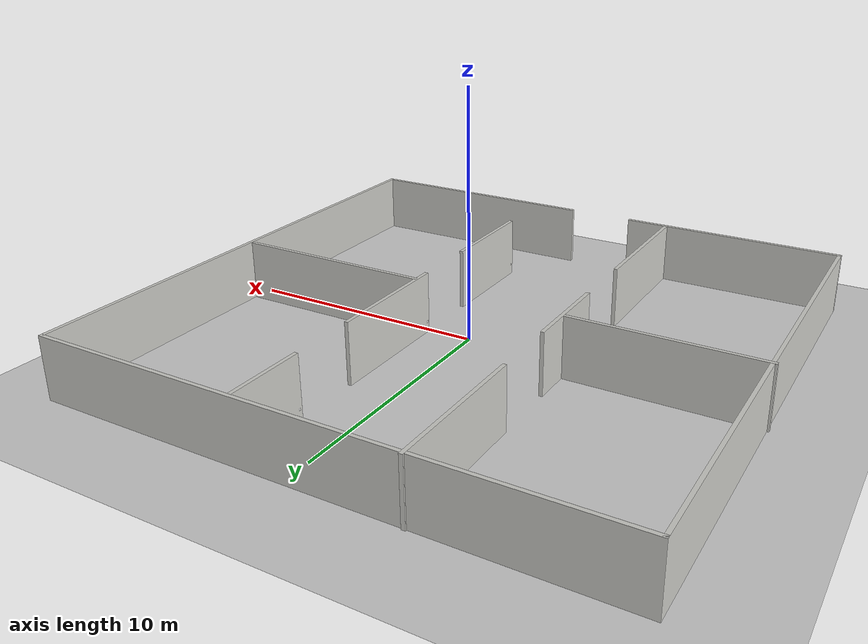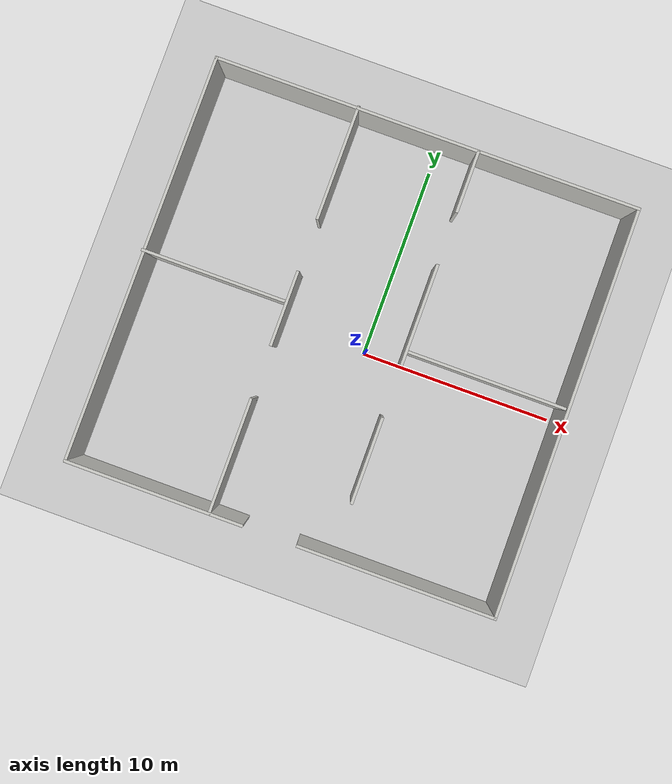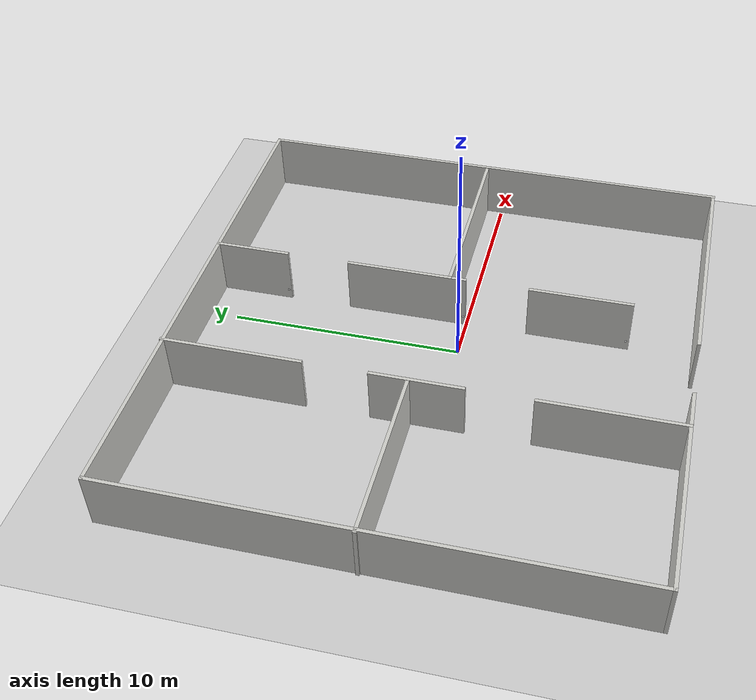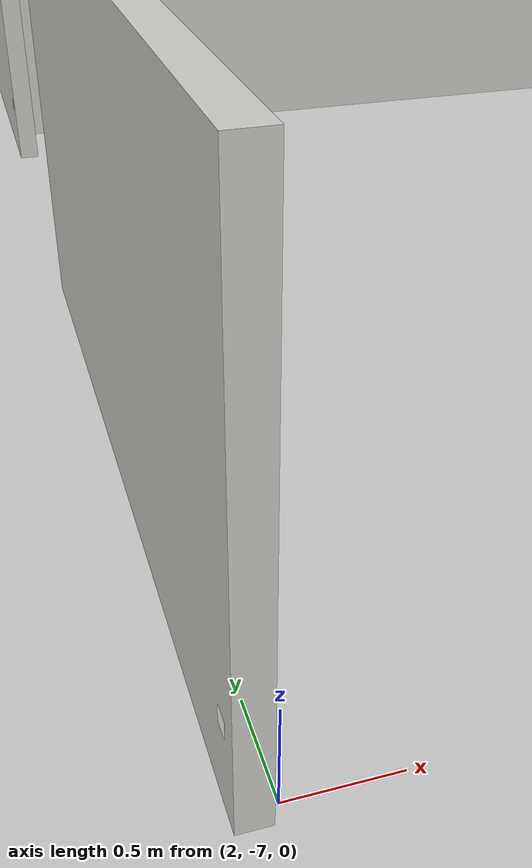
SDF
<sdf version="1.7">
 <world name="default">
  <scene><ambient>0.4 0.4 0.4 1</ambient><background>0.7 0.7 0.7 1</background><shadows>1</shadows></scene>
  <light name="sun" type="directional">
   <pose>0 0 10 0 -0 0</pose>
   <diffuse>0.8 0.8 0.8 1</diffuse>
   <specular>0.2 0.2 0.2 1</specular>
   <attenuation>
    <range>1000</range>
    <constant>0.9</constant>
    <linear>0.01</linear>
    <quadratic>0.001</quadratic>
   </attenuation>
   <direction>-0.5 0.1 -0.9</direction>
   <spot><inner_angle>0</inner_angle><outer_angle>0</outer_angle><falloff>0</falloff></spot>
  </light>
  <model name="ground_plane">
   <static>1</static>
   <link name="link">
    <collision name="collision">
     <geometry><plane><normal>0 0 1</normal><size>100 100</size></plane></geometry>
     <surface>
      <contact><collide_bitmask>65535</collide_bitmask></contact>
      <friction><ode><mu>100</mu><mu2>50</mu2></ode></friction>
     </surface>
    </collision>
    <visual name="visual">
     <cast_shadows>0</cast_shadows>
     <geometry><plane><normal>0 0 1</normal><size>100 100</size></plane></geometry>
     <material>
      <script><uri>file://media/materials/scripts/gazebo.material</uri><name>Gazebo/Grey</name></script>
     </material>
    </visual>
   </link>
  </model>
  <physics type="ode">
   <real_time_update_rate>1000</real_time_update_rate>
   <max_step_size>0.001</max_step_size>
   <real_time_factor>1</real_time_factor>
   <ode>
    <solver>
     <type>quick</type>
     <iters>150</iters>
     <precon_iters>0</precon_iters>
     <sor>1.4</sor>
     <use_dynamic_moi_rescaling>1</use_dynamic_moi_rescaling>
    </solver>
    <constraints>
     <cfm>1e-05</cfm>
     <erp>0.2</erp>
     <contact_max_correcting_vel>2000</contact_max_correcting_vel>
     <contact_surface_layer>0.01</contact_surface_layer>
    </constraints>
   </ode>
  </physics>
  <model name="TP_Scene3">
   <pose>-0.844964 0.723773 0 0 -0 0</pose>
   <link name="Wall_0">
    <collision name="Wall_0_Collision">
     <geometry><box><size>21.25 0.15 2.5</size></box></geometry>
     <pose>0 0 1.25 0 -0 0</pose>
    </collision>
    <visual name="Wall_0_Visual">
     <pose>0 0 1.25 0 -0 0</pose>
     <geometry><box><size>21.25 0.15 2.5</size></box></geometry>
     <material>
      <script><uri>file://media/materials/scripts/gazebo.material</uri><name>Gazebo/CeilingTiled</name></script>
      <ambient>0.921569 0.807843 0.615686 1</ambient>
     </material>
     <meta><layer>0</layer></meta>
    </visual>
    <pose>-11.0135 -0.02783 0 0 -0 1.5708</pose>
   </link>
   <link name="Wall_1">
    <collision name="Wall_1_Collision">
     <geometry><box><size>22.25 0.15 2.5</size></box></geometry>
     <pose>0 0 1.25 0 -0 0</pose>
    </collision>
    <visual name="Wall_1_Visual">
     <pose>0 0 1.25 0 -0 0</pose>
     <geometry><box><size>22.25 0.15 2.5</size></box></geometry>
     <material>
      <script><uri>file://media/materials/scripts/gazebo.material</uri><name>Gazebo/CeilingTiled</name></script>
      <ambient>0.921569 0.807843 0.615686 1</ambient>
     </material>
     <meta><layer>0</layer></meta>
    </visual>
    <pose>0.036465 10.5222 0 0 -0 0</pose>
   </link>
   <link name="Wall_2">
    <collision name="Wall_2_Collision">
     <geometry><box><size>21.25 0.15 2.5</size></box></geometry>
     <pose>0 0 1.25 0 -0 0</pose>
    </collision>
    <visual name="Wall_2_Visual">
     <pose>0 0 1.25 0 -0 0</pose>
     <geometry><box><size>21.25 0.15 2.5</size></box></geometry>
     <material>
      <script><uri>file://media/materials/scripts/gazebo.material</uri><name>Gazebo/CeilingTiled</name></script>
      <ambient>0.921569 0.807843 0.615686 1</ambient>
     </material>
     <meta><layer>0</layer></meta>
    </visual>
    <pose>11.0865 -0.02783 0 0 -0 -1.5708</pose>
   </link>
   <link name="Wall_25">
    <collision name="Wall_25_Collision">
     <geometry><box><size>7.5 0.15 2.5</size></box></geometry>
     <pose>0 0 1.25 0 -0 0</pose>
    </collision>
    <visual name="Wall_25_Visual">
     <pose>0 0 1.25 0 -0 0</pose>
     <geometry><box><size>7.5 0.15 2.5</size></box></geometry>
     <material>
      <script><uri>file://media/materials/scripts/gazebo.material</uri><name>Gazebo/CeilingTiled</name></script>
      <ambient>0.921569 0.807843 0.615686 1</ambient>
     </material>
     <meta><layer>0</layer></meta>
    </visual>
    <pose>-7.41147 0.333977 0 0 -0 3.14159</pose>
   </link>
   <link name="Wall_3">
    <collision name="Wall_3_Collision">
     <geometry><box><size>10.25 0.15 2.5</size></box></geometry>
     <pose>0 0 1.25 0 -0 0</pose>
    </collision>
    <visual name="Wall_3_Visual">
     <pose>0 0 1.25 0 -0 0</pose>
     <geometry><box><size>10.25 0.15 2.5</size></box></geometry>
     <material>
      <script><uri>file://media/materials/scripts/gazebo.material</uri><name>Gazebo/CeilingTiled</name></script>
      <ambient>0.921569 0.807843 0.615686 1</ambient>
     </material>
     <meta><layer>0</layer></meta>
    </visual>
    <pose>6.03646 -10.5778 0 0 -0 3.14159</pose>
   </link>
   <link name="Wall_31">
    <collision name="Wall_31_Collision">
     <geometry><box><size>8.25 0.15 2.5</size></box></geometry>
     <pose>0 0 1.25 0 -0 0</pose>
    </collision>
    <visual name="Wall_31_Visual">
     <pose>0 0 1.25 0 -0 0</pose>
     <geometry><box><size>8.25 0.15 2.5</size></box></geometry>
     <material>
      <script><uri>file://media/materials/scripts/gazebo.material</uri><name>Gazebo/CeilingTiled</name></script>
      <ambient>0.921569 0.807843 0.615686 1</ambient>
     </material>
     <meta><layer>0</layer></meta>
    </visual>
    <pose>6.84816 0.060734 0 0 -0 3.14159</pose>
   </link>
   <link name="Wall_41">
    <collision name="Wall_41_Collision">
     <geometry><box><size>9.26136 0.15 2.5</size></box></geometry>
     <pose>0 0 1.25 0 -0 0</pose>
    </collision>
    <visual name="Wall_41_Visual">
     <pose>0 0 1.25 0 -0 0</pose>
     <geometry><box><size>9.26136 0.15 2.5</size></box></geometry>
     <material>
      <script><uri>file://media/materials/scripts/gazebo.material</uri><name>Gazebo/CeilingTiled</name></script>
      <ambient>0.921569 0.807843 0.615686 1</ambient>
     </material>
     <meta><layer>0</layer></meta>
    </visual>
    <pose>-6.45786 -10.5778 0 0 -0 3.14159</pose>
   </link>
   <link name="Wall_45">
    <collision name="Wall_45_Collision">
     <geometry><box><size>6 0.15 2.5</size></box></geometry>
     <pose>0 0 1.25 0 -0 0</pose>
    </collision>
    <visual name="Wall_45_Visual">
     <pose>0 0 1.25 0 -0 0</pose>
     <geometry><box><size>6 0.15 2.5</size></box></geometry>
     <material>
      <script><uri>file://media/materials/scripts/gazebo.material</uri><name>Gazebo/CeilingTiled</name></script>
      <ambient>0.921569 0.807843 0.615686 1</ambient>
     </material>
     <meta><layer>0</layer></meta>
    </visual>
    <pose>-3.58345 7.65283 0 0 -0 -1.5708</pose>
   </link>
   <link name="Wall_47">
    <collision name="Wall_47_Collision">
     <geometry><box><size>3.90359 0.15 2.5</size></box></geometry>
     <pose>0 0 1.25 0 -0 0</pose>
    </collision>
    <visual name="Wall_47_Visual">
     <pose>0 0 1.25 0 -0 0</pose>
     <geometry><box><size>3.90359 0.15 2.5</size></box></geometry>
     <material>
      <script><uri>file://media/materials/scripts/gazebo.material</uri><name>Gazebo/CeilingTiled</name></script>
      <ambient>0.921569 0.807843 0.615686 1</ambient>
     </material>
     <meta><layer>0</layer></meta>
    </visual>
    <pose>-3.5836 0.001034 0 0 -0 -1.57087</pose>
   </link>
   <link name="Wall_49">
    <collision name="Wall_49_Collision">
     <geometry><box><size>6 0.15 2.5</size></box></geometry>
     <pose>0 0 1.25 0 -0 0</pose>
    </collision>
    <visual name="Wall_49_Visual">
     <pose>0 0 1.25 0 -0 0</pose>
     <geometry><box><size>6 0.15 2.5</size></box></geometry>
     <material>
      <script><uri>file://media/materials/scripts/gazebo.material</uri><name>Gazebo/CeilingTiled</name></script>
      <ambient>0.921569 0.807843 0.615686 1</ambient>
     </material>
     <meta><layer>0</layer></meta>
    </visual>
    <pose>-3.58374 -7.65076 0 0 -0 -1.5708</pose>
   </link>
   <link name="Wall_51">
    <collision name="Wall_51_Collision">
     <geometry><box><size>3.25 0.15 2.5</size></box></geometry>
     <pose>0 0 1.25 0 -0 0</pose>
    </collision>
    <visual name="Wall_51_Visual">
     <pose>0 0 1.25 0 -0 0</pose>
     <geometry><box><size>3.25 0.15 2.5</size></box></geometry>
     <material>
      <script><uri>file://media/materials/scripts/gazebo.material</uri><name>Gazebo/CeilingTiled</name></script>
      <ambient>0.921569 0.807843 0.615686 1</ambient>
     </material>
     <meta><layer>0</layer></meta>
    </visual>
    <pose>2.73107 8.92021 0 0 -0 -1.5708</pose>
   </link>
   <link name="Wall_53">
    <collision name="Wall_53_Collision">
     <geometry><box><size>5.25 0.15 2.5</size></box></geometry>
     <pose>0 0 1.25 0 -0 0</pose>
    </collision>
    <visual name="Wall_53_Visual">
     <pose>0 0 1.25 0 -0 0</pose>
     <geometry><box><size>5.25 0.15 2.5</size></box></geometry>
     <material>
      <script><uri>file://media/materials/scripts/gazebo.material</uri><name>Gazebo/CeilingTiled</name></script>
      <ambient>0.921569 0.807843 0.615686 1</ambient>
     </material>
     <meta><layer>0</layer></meta>
    </visual>
    <pose>2.73107 1.97021 0 0 -0 -1.5708</pose>
   </link>
   <link name="Wall_55">
    <collision name="Wall_55_Collision">
     <geometry><box><size>4.45033 0.15 2.5</size></box></geometry>
     <pose>0 0 1.25 0 -0 0</pose>
    </collision>
    <visual name="Wall_55_Visual">
     <pose>0 0 1.25 0 -0 0</pose>
     <geometry><box><size>4.45033 0.15 2.5</size></box></geometry>
     <material>
      <script><uri>file://media/materials/scripts/gazebo.material</uri><name>Gazebo/CeilingTiled</name></script>
      <ambient>0.921569 0.807843 0.615686 1</ambient>
     </material>
     <meta><layer>0</layer></meta>
    </visual>
    <pose>2.73107 -5.57996 0 0 -0 -1.5708</pose>
   </link>
   <static>1</static>
  </model>
  <gravity>0 0 -9.8</gravity>
  <magnetic_field>6e-06 2.3e-05 -4.2e-05</magnetic_field>
  <atmosphere type="adiabatic"/>
  <spherical_coordinates>
   <surface_model>EARTH_WGS84</surface_model>
   <latitude_deg>0</latitude_deg>
   <longitude_deg>0</longitude_deg>
   <elevation>0</elevation>
   <heading_deg>0</heading_deg>
  </spherical_coordinates>
  <model name="aruco_visual_marker_0">
   <link name="marker">
    <visual name="visual">
     <geometry><box><size>0.09 0.09 0.001</size></box></geometry>
     <material>
      <script>
       <uri>model://aruco_visual_marker_0/materials/scripts</uri>
       <uri>model://aruco_visual_marker_0/materials/textures</uri>
       <name>ArucoVisualMarker0/Marker</name>
      </script>
      <ambient>1 1 1 1</ambient>
      <diffuse>1 1 1 1</diffuse>
      <specular>0 0 0 1</specular>
      <emissive>1 1 1 0</emissive>
      <shader type="vertex"><normal_map>__default__</normal_map></shader>
     </material>
    </visual>
    <collision name="collision"><geometry><box><size>0.09 0.09 0.001</size></box></geometry></collision>
   </link>
   <link name="marker_pad">
    <pose relative_to="marker">0 0 -1e-05 0 -0 0</pose>
    <visual name="visual">
     <geometry><box><size>0.09 0.09 0.001</size></box></geometry>
     <material>
      <lighting>1</lighting>
      <script><uri>file://media/materials/scripts/gazebo.material</uri><name>Gazebo/White</name></script>
      <ambient>0.3 0.3 0.3 1</ambient>
      <diffuse>0.7 0.7 0.7 1</diffuse>
      <specular>0.01 0.01 0.01 1</specular>
      <emissive>1 1 1 0</emissive>
      <shader type="vertex"><normal_map>__default__</normal_map></shader>
     </material>
    </visual>
    <collision name="collision"><geometry><box><size>0.09 0.09 0.001</size></box></geometry></collision>
   </link>
   <joint name="marker_JOINT_marker_pad" type="revolute">
    <parent>marker</parent>
    <child>marker_pad</child>
    <axis>
     <xyz>0 0 1</xyz>
     <limit><upper>0</upper><lower>0</lower></limit>
     <dynamics><spring_reference>0</spring_reference><spring_stiffness>0</spring_stiffness></dynamics>
    </axis>
   </joint>
   <static>1</static>
   <pose>1.80699 -6.95269 0.450532 3.14159 -1.56869 3.14159</pose>
  </model>
  <model name="aruco_visual_marker_0_clone">
   <link name="marker">
    <visual name="visual">
     <geometry><box><size>0.09 0.09 0.001</size></box></geometry>
     <material>
      <script>
       <uri>model://aruco_visual_marker_0/materials/scripts</uri>
       <uri>model://aruco_visual_marker_0/materials/textures</uri>
       <name>ArucoVisualMarker0/Marker</name>
      </script>
      <ambient>1 1 1 1</ambient>
      <diffuse>1 1 1 1</diffuse>
      <specular>0 0 0 1</specular>
      <emissive>1 1 1 0</emissive>
      <shader type="vertex"><normal_map>__default__</normal_map></shader>
     </material>
    </visual>
    <collision name="collision"><geometry><box><size>0.09 0.09 0.001</size></box></geometry></collision>
   </link>
   <link name="marker_pad">
    <pose relative_to="marker">0 0 -1e-05 0 -0 0</pose>
    <visual name="visual">
     <geometry><box><size>0.09 0.09 0.001</size></box></geometry>
     <material>
      <lighting>1</lighting>
      <script><uri>file://media/materials/scripts/gazebo.material</uri><name>Gazebo/White</name></script>
      <ambient>0.3 0.3 0.3 1</ambient>
      <diffuse>0.7 0.7 0.7 1</diffuse>
      <specular>0.01 0.01 0.01 1</specular>
      <emissive>1 1 1 0</emissive>
      <shader type="vertex"><normal_map>__default__</normal_map></shader>
     </material>
    </visual>
    <collision name="collision"><geometry><box><size>0.09 0.09 0.001</size></box></geometry></collision>
   </link>
   <joint name="marker_JOINT_marker_pad" type="revolute">
    <parent>marker</parent>
    <child>marker_pad</child>
    <axis>
     <xyz>0 0 1</xyz>
     <limit><upper>0</upper><lower>0</lower></limit>
     <dynamics><spring_reference>0</spring_reference><spring_stiffness>0</spring_stiffness></dynamics>
    </axis>
   </joint>
   <static>1</static>
   <pose>1.80743 0.179236 0.450532 3.14159 -1.56869 3.14159</pose>
  </model>
  <model name="aruco_visual_marker_1">
   <link name="marker">
    <visual name="visual">
     <geometry><box><size>0.09 0.09 0.001</size></box></geometry>
     <material>
      <script>
       <uri>model://aruco_visual_marker_1/materials/scripts</uri>
       <uri>model://aruco_visual_marker_1/materials/textures</uri>
       <name>ArucoVisualMarker1/Marker</name>
      </script>
      <ambient>1 1 1 1</ambient>
      <diffuse>1 1 1 1</diffuse>
      <specular>0 0 0 1</specular>
      <emissive>1 1 1 0</emissive>
      <shader type="vertex"><normal_map>__default__</normal_map></shader>
     </material>
    </visual>
    <collision name="collision"><geometry><box><size>0.09 0.09 0.001</size></box></geometry></collision>
   </link>
   <link name="marker_pad">
    <pose relative_to="marker">0 0 -1e-05 0 -0 0</pose>
    <visual name="visual">
     <geometry><box><size>0.09 0.09 0.001</size></box></geometry>
     <material>
      <lighting>1</lighting>
      <script><uri>file://media/materials/scripts/gazebo.material</uri><name>Gazebo/White</name></script>
      <ambient>0.3 0.3 0.3 1</ambient>
      <diffuse>0.7 0.7 0.7 1</diffuse>
      <specular>0.01 0.01 0.01 1</specular>
      <emissive>1 1 1 0</emissive>
      <shader type="vertex"><normal_map>__default__</normal_map></shader>
     </material>
    </visual>
    <collision name="collision"><geometry><box><size>0.09 0.09 0.001</size></box></geometry></collision>
   </link>
   <joint name="marker_JOINT_marker_pad" type="revolute">
    <parent>marker</parent>
    <child>marker_pad</child>
    <axis>
     <xyz>0 0 1</xyz>
     <limit><upper>0</upper><lower>0</lower></limit>
     <dynamics><spring_reference>0</spring_reference><spring_stiffness>0</spring_stiffness></dynamics>
    </axis>
   </joint>
   <static>1</static>
   <pose>-4.35116 -4.05683 0.453604 3.14159 1.56925 3.14159</pose>
  </model>
  <model name="aruco_visual_marker_2">
   <link name="marker">
    <visual name="visual">
     <geometry><box><size>0.09 0.09 0.001</size></box></geometry>
     <material>
      <script>
       <uri>model://aruco_visual_marker_2/materials/scripts</uri>
       <uri>model://aruco_visual_marker_2/materials/textures</uri>
       <name>ArucoVisualMarker2/Marker</name>
      </script>
      <ambient>1 1 1 1</ambient>
      <diffuse>1 1 1 1</diffuse>
      <specular>0 0 0 1</specular>
      <emissive>1 1 1 0</emissive>
      <shader type="vertex"><normal_map>__default__</normal_map></shader>
     </material>
    </visual>
    <collision name="collision"><geometry><box><size>0.09 0.09 0.001</size></box></geometry></collision>
   </link>
   <link name="marker_pad">
    <pose relative_to="marker">0 0 -1e-05 0 -0 0</pose>
    <visual name="visual">
     <geometry><box><size>0.09 0.09 0.001</size></box></geometry>
     <material>
      <lighting>1</lighting>
      <script><uri>file://media/materials/scripts/gazebo.material</uri><name>Gazebo/White</name></script>
      <ambient>0.3 0.3 0.3 1</ambient>
      <diffuse>0.7 0.7 0.7 1</diffuse>
      <specular>0.01 0.01 0.01 1</specular>
      <emissive>1 1 1 0</emissive>
      <shader type="vertex"><normal_map>__default__</normal_map></shader>
     </material>
    </visual>
    <collision name="collision"><geometry><box><size>0.09 0.09 0.001</size></box></geometry></collision>
   </link>
   <joint name="marker_JOINT_marker_pad" type="revolute">
    <parent>marker</parent>
    <child>marker_pad</child>
    <axis>
     <xyz>0 0 1</xyz>
     <limit><upper>0</upper><lower>0</lower></limit>
     <dynamics><spring_reference>0</spring_reference><spring_stiffness>0</spring_stiffness></dynamics>
    </axis>
   </joint>
   <static>1</static>
   <pose>-4.34892 2.55009 0.455336 3.14159 1.57022 3.14159</pose>
  </model>
  <model name="aruco_visual_marker_3">
   <link name="marker">
    <visual name="visual">
     <geometry><box><size>0.09 0.09 0.001</size></box></geometry>
     <material>
      <script>
       <uri>model://aruco_visual_marker_3/materials/scripts</uri>
       <uri>model://aruco_visual_marker_3/materials/textures</uri>
       <name>ArucoVisualMarker3/Marker</name>
      </script>
      <ambient>1 1 1 1</ambient>
      <diffuse>1 1 1 1</diffuse>
      <specular>0 0 0 1</specular>
      <emissive>1 1 1 0</emissive>
      <shader type="vertex"><normal_map>__default__</normal_map></shader>
     </material>
    </visual>
    <collision name="collision"><geometry><box><size>0.09 0.09 0.001</size></box></geometry></collision>
   </link>
   <link name="marker_pad">
    <pose relative_to="marker">0 0 -1e-05 0 -0 0</pose>
    <visual name="visual">
     <geometry><box><size>0.09 0.09 0.001</size></box></geometry>
     <material>
      <lighting>1</lighting>
      <script><uri>file://media/materials/scripts/gazebo.material</uri><name>Gazebo/White</name></script>
      <ambient>0.3 0.3 0.3 1</ambient>
      <diffuse>0.7 0.7 0.7 1</diffuse>
      <specular>0.01 0.01 0.01 1</specular>
      <emissive>1 1 1 0</emissive>
      <shader type="vertex"><normal_map>__default__</normal_map></shader>
     </material>
    </visual>
    <collision name="collision"><geometry><box><size>0.09 0.09 0.001</size></box></geometry></collision>
   </link>
   <joint name="marker_JOINT_marker_pad" type="revolute">
    <parent>marker</parent>
    <child>marker_pad</child>
    <axis>
     <xyz>0 0 1</xyz>
     <limit><upper>0</upper><lower>0</lower></limit>
     <dynamics><spring_reference>0</spring_reference><spring_stiffness>0</spring_stiffness></dynamics>
    </axis>
   </joint>
   <static>1</static>
   <pose>1.80927 8.14403 0.454759 3.14159 -1.56841 3.14159</pose>
  </model>
 </world>
</sdf>
